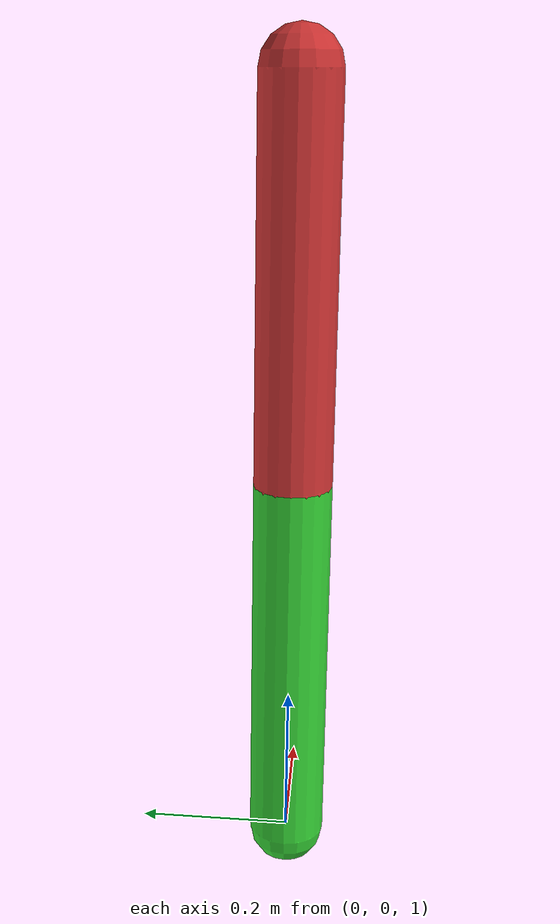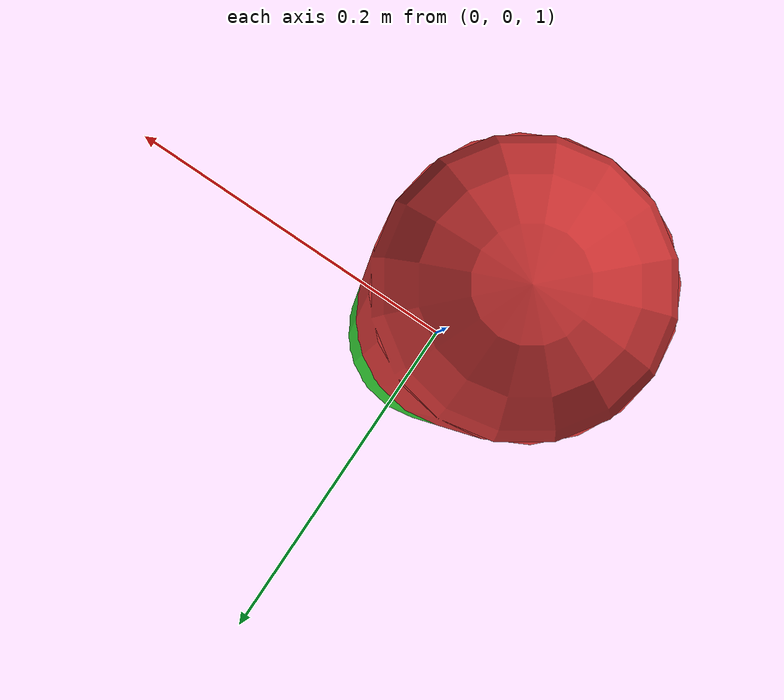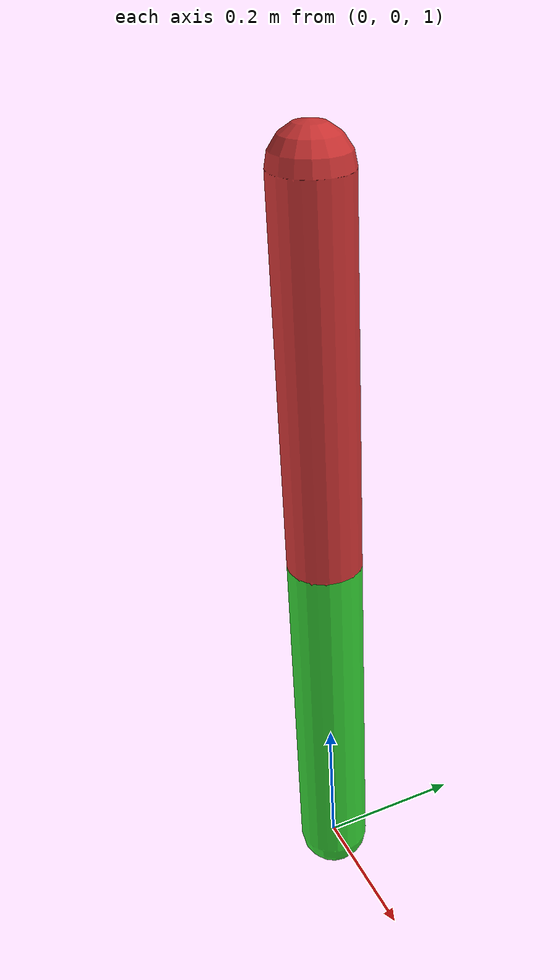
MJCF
<mujoco model="double_pendulum">
  <!-- Timestep is dt_ctrl / mujoco_substeps -->
  <option timestep="0.001" integrator="RK4" gravity="0 0 -9.81"/>
  <worldbody>
    <body pos="0 0 2">
      <joint name="pin1" type="hinge" axis="0 1 0" damping="0.5"/>
      <geom type="capsule" fromto="0 0 0 0 0 -0.5" size="0.05" rgba="0.8 0.2 0.2 1" mass="1"/>
      <body pos="0 0 -0.5">
        <joint name="pin2" type="hinge" axis="0 1 0" damping="0.5"/>
        <geom type="capsule" fromto="0 0 0 0 0 -0.5" size="0.05" rgba="0.2 0.8 0.2 1" mass="1"/>
      </body>
    </body>
  </worldbody>
  <actuator>
    <motor joint="pin1" name="torque1" gear="1"/>
    <motor joint="pin2" name="torque2" gear="1"/>
  </actuator>
</mujoco>
